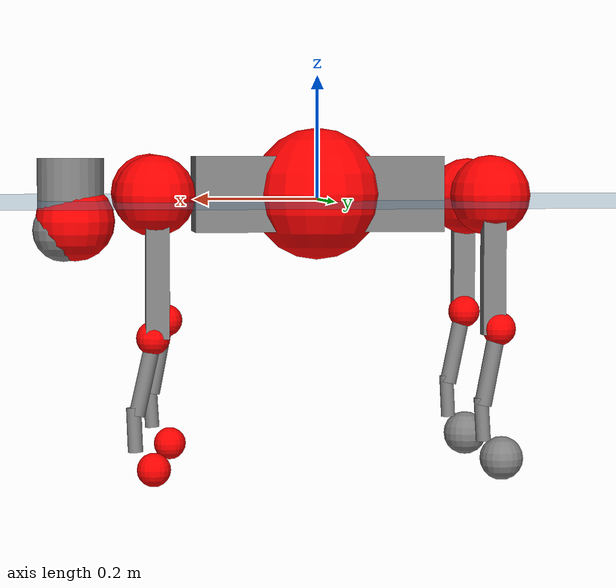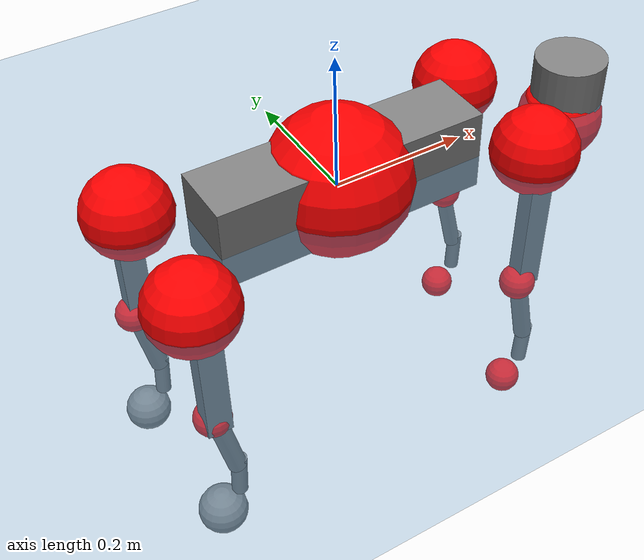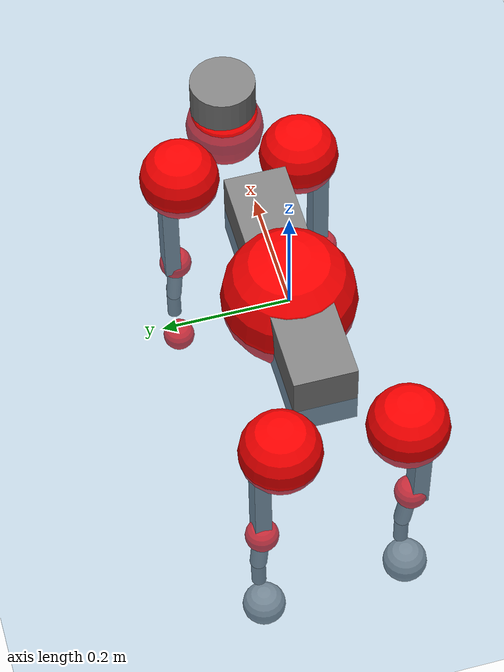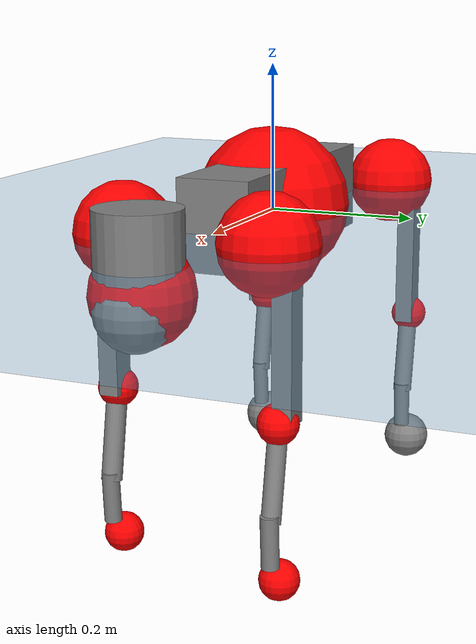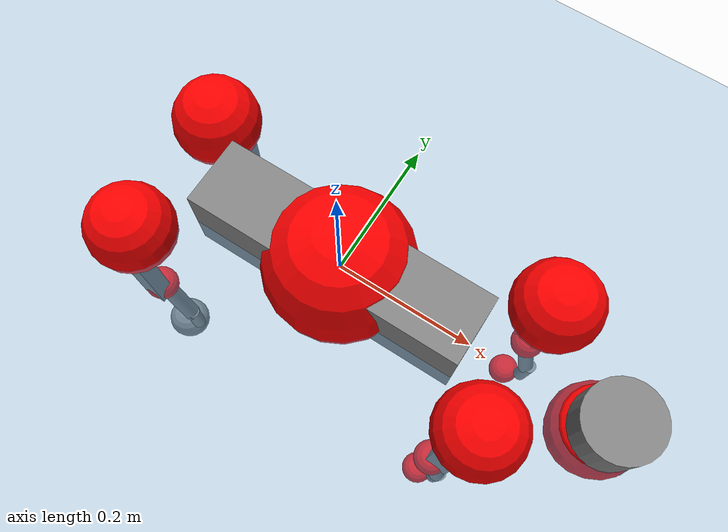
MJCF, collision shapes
<mujoco model="go2">
  <compiler angle="radian" assetdir="assets" balanceinertia="true" inertiafromgeom="false"/>

  <option timestep="0.005" density="1.2" viscosity="2e-05"/>

  <size nkey="1"/>

  <visual>
    <quality shadowsize="8192"/>
    <map shadowclip="0.5"/>
  </visual>

  <default>
    <default class="/">
      <geom contype="0" conaffinity="0" group="1" solref="-1000 -80"/>
      <site size="0.01 0.005 0.005" group="5"/>
      <general forcelimited="true" biastype="affine" gainprm="20" biasprm="0 -20 -0.5"/>
      <default class="go2">
        <joint armature="0.01" damping="0.01" frictionloss="0.2"/>
        <geom condim="1" margin="0.001"/>
        <default class="visual">
          <geom type="mesh" group="2"/>
        </default>
        <default class="collision">
          <geom group="3"/>
          <default class="foot">
            <geom size="0.022 0 0" condim="6" priority="1" friction="0.8 0.02 0.01" solimp="0.015 1 0.022"/>
          </default>
        </default>
        <default class="reward_collision_sphere">
          <geom group="5" rgba="1 0 0 1"/>
        </default>
      </default>
    </default>
  </default>

  <asset>
    <texture type="skybox" colorspace="auto" name="//unnamed_texture_0" builtin="gradient" rgb1="0.95 0.95 0.95" rgb2="0.95 0.95 0.95" width="100" height="600"/>
    <texture type="2d" colorspace="auto" name="texplane" builtin="checker" rgb1="0.345 0.575 0.748" rgb2="0.345 0.575 0.748" markrgb="1 1 1" width="512" height="512"/>
    <material name="MatPlane" class="/" texture="texplane" texuniform="true" texrepeat="2 2" specular="0.9"/>
    <material name="metal" class="/" rgba="0.9 0.95 0.95 1"/>
    <material name="black" class="/" rgba="0 0 0 1"/>
    <material name="white" class="/"/>
    <material name="gray" class="/" rgba="0.671705 0.692426 0.77427 1"/>
    <mesh name="base_0" class="/" file="base_0.obj"/>
    <mesh name="base_1" class="/" file="base_1.obj"/>
    <mesh name="base_2" class="/" file="base_2.obj"/>
    <mesh name="base_3" class="/" file="base_3.obj"/>
    <mesh name="base_4" class="/" file="base_4.obj"/>
    <mesh name="hip_0" class="/" file="hip_0.obj"/>
    <mesh name="hip_1" class="/" file="hip_1.obj"/>
    <mesh name="thigh_0" class="/" file="thigh_0.obj"/>
    <mesh name="thigh_1" class="/" file="thigh_1.obj"/>
    <mesh name="thigh_mirror_0" class="/" file="thigh_mirror_0.obj"/>
    <mesh name="thigh_mirror_1" class="/" file="thigh_mirror_1.obj"/>
    <mesh name="calf_0" class="/" file="calf_0.obj"/>
    <mesh name="calf_1" class="/" file="calf_1.obj"/>
    <mesh name="calf_mirror_0" class="/" file="calf_mirror_0.obj"/>
    <mesh name="calf_mirror_1" class="/" file="calf_mirror_1.obj"/>
    <mesh name="foot" class="/" file="foot.obj"/>
  </asset>

  <worldbody>
    <geom name="floor" class="/" size="100 100 0.125" type="plane" group="0" material="MatPlane"/>
    <light name="toplight_shadow" class="/" pos="0 0 5" dir="0.0990148 0.0990148 -0.990148" type="directional" ambient="0.04 0.04 0.04" diffuse="0.55 0.55 0.55" specular="0.12 0.12 0.12"/>
    <light name="toplight_fill" class="/" pos="0 0 5" dir="0.0990148 0.0990148 -0.990148" type="directional" castshadow="false" ambient="0.04 0.04 0.04" diffuse="0.3 0.3 0.3" specular="0.08 0.08 0.08"/>
    <body name="trunk" childclass="go2" pos="0.000622031 -0.000343986 0.00901189" quat="1 0.000135421 -0.000197514 0.000132706">
      <inertial pos="0.0292489 -0.0128547 -0.0152084" quat="0.000882012 0.713435 -0.00168905 0.700719" mass="8.75891" diaginertia="0.521078 0.0429975 0.0223216"/>
      <joint name="//unnamed_joint_0" type="free" armature="0" damping="0" frictionloss="0"/>
      <geom name="//unnamed_geom_1" class="visual" material="black" mesh="base_0"/>
      <geom name="//unnamed_geom_2" class="visual" material="black" mesh="base_1"/>
      <geom name="//unnamed_geom_3" class="visual" material="black" mesh="base_2"/>
      <geom name="//unnamed_geom_4" class="visual" material="white" mesh="base_3"/>
      <geom name="//unnamed_geom_5" class="visual" material="gray" mesh="base_4"/>
      <geom name="trunk_1" class="collision" size="0.200593 0.0498549 0.0607857" type="box"/>
      <geom name="trunk_2" class="collision" size="0.0533208 0.0479887" pos="0.397444 0 0.00968319" type="cylinder"/>
      <geom name="trunk_3" class="collision" size="0.0501215" pos="0.4086 0 -0.0580992"/>
      <geom name="//unnamed_geom_9" class="reward_collision_sphere" size="0.106642"/>
      <geom name="//unnamed_geom_10" class="reward_collision_sphere" size="0.0639849" pos="0.390471 0 -0.0435744"/>
      <site name="imu" pos="-0.0580391 0.0349814 0.0167463" size="0.0106642"/>
      <camera name="track" pos="0 -1.67277 0" quat="0.707107 0.707107 0 0" mode="trackcom"/>
      <camera name="ego_camera" pos="0.435096 0 0.0435744" quat="-0.5 -0.5 0.5 0.5"/>
      <body name="FL_hip" pos="0.26925 0.0468545 -0.000285432" quat="0.999999 -0.000510854 -0.00156085 0.000253993">
        <inertial pos="0.00369746 0.00114212 0.00658364" quat="0.492327 0.496763 0.510682 0.500045" mass="0.896501" diaginertia="0.00487709 0.000276988 0.000388938"/>
        <joint name="FL_hip_joint" pos="0 0 0" axis="0.999978 -0.00099653 -0.00653531" range="-0.935388 1.06751" armature="0.00618805" damping="0" frictionloss="0.32767"/>
        <geom name="//unnamed_geom_11" class="visual" material="metal" mesh="hip_0"/>
        <geom name="//unnamed_geom_12" class="visual" material="gray" mesh="hip_1"/>
        <geom name="//unnamed_geom_13" class="collision" size="0.0490551 0.0213283" pos="0 0.0669109 0" quat="0.707107 0.707107 0 0" type="cylinder"/>
        <geom name="//unnamed_geom_14" class="reward_collision_sphere" size="0.0639849" pos="0 0.058547 0"/>
        <body name="FL_thigh" pos="-0.00248038 0.0814522 -0.00557418" quat="1 0.000145985 -9.05359e-05 1.34987e-05">
          <inertial pos="-0.00564677 -0.0196617 -0.0248026" quat="0.82902 0.0847303 -0.0213577 0.55235" mass="1.53766" diaginertia="0.0303132 0.00239733 0.00100221"/>
          <joint name="FL_thigh_joint" pos="0 0 0" axis="0.0225564 0.999573 0.0185987" stiffness="0.0197139" range="-1.40628 3.37933" armature="0.00849558" damping="0.0153247" frictionloss="0.205452"/>
          <geom name="//unnamed_geom_15" class="visual" material="metal" mesh="thigh_0"/>
          <geom name="//unnamed_geom_16" class="visual" material="gray" mesh="thigh_1"/>
          <geom name="//unnamed_geom_17" class="collision" size="0.113573 0.0130636 0.0181291" pos="0 0 -0.103126" quat="0.707107 0 0.707107 0" type="box"/>
          <body name="FL_calf" pos="0.00558917 -0.0088229 -0.215955" quat="0.999981 0.00400729 -0.00401084 -0.00240003">
            <inertial pos="0.00898201 -0.000437599 -0.138062" quat="0.712208 0.00207493 -0.00218101 0.701962" mass="0.346614" diaginertia="0.00771922 0.000619423 5.04595e-05"/>
            <joint name="FL_calf_joint" pos="0 0 0" axis="-0.0129294 0.999854 0.0111312" range="-2.7472 -0.796698" armature="0.0139963" damping="0" frictionloss="0.309704"/>
            <geom name="//unnamed_geom_18" class="visual" material="gray" mesh="calf_0"/>
            <geom name="//unnamed_geom_19" class="visual" material="black" mesh="calf_1"/>
            <geom name="FL_calf0" class="collision" size="0.012797 0.0639849" pos="0.0111563 0 -0.0580992" quat="0.994493 0 -0.104807 0" type="cylinder"/>
            <geom name="//unnamed_geom_21" class="collision" size="0.0117306 0.0346585" pos="0.0278908 0 -0.143311" quat="0.999688 0 0.0249974 0" type="cylinder"/>
            <geom name="//unnamed_geom_22" class="visual" pos="0 0 -0.206252" quat="1 0 0 0" material="black" mesh="foot"/>
            <geom name="FL_foot" class="foot" size="0.0141941" pos="-0.00278908 0 -0.206252"/>
            <geom name="//unnamed_geom_24" class="reward_collision_sphere" size="0.0266604"/>
            <geom name="//unnamed_geom_25" class="reward_collision_sphere" size="0.0266604" pos="-0.00278908 0 -0.206252"/>
            <site name="FL_foot" class="foot" pos="-0.00278908 0 -0.206252" size="0.0106642"/>
          </body>
        </body>
      </body>
      <body name="FR_hip" pos="0.265438 -0.0315032 0.000492367" quat="0.999986 -0.000162162 0.00510893 0.00110941">
        <inertial pos="-0.00776901 -0.00317798 0.0017058" quat="0.497604 0.508035 0.502061 0.492164" mass="0.897133" diaginertia="0.00536321 0.000302031 0.000399038"/>
        <joint name="FR_hip_joint" pos="0 0 0" axis="0.999973 -0.00617667 0.00403406" range="-1.24543 1.29151" armature="0.0101945" damping="0" frictionloss="0.299487"/>
        <geom name="//unnamed_geom_26" class="visual" pos="0 -1.14935e-09 -4.92978e-08" quat="4.63268e-05 1 0 0" material="metal" mesh="hip_0"/>
        <geom name="//unnamed_geom_27" class="visual" pos="0 -1.86323e-09 1.21932e-07" quat="4.63268e-05 1 0 0" material="gray" mesh="hip_1"/>
        <geom name="//unnamed_geom_28" class="collision" size="0.0490551 0.0213283" pos="0 -0.0669109 0" quat="0.707107 0.707107 0 0" type="cylinder"/>
        <geom name="//unnamed_geom_29" class="reward_collision_sphere" size="0.0639849" pos="0 -0.058547 0"/>
        <body name="FR_thigh" pos="-0.013624 -0.0870889 -0.00117625" quat="0.999998 0.00108258 0.00151768 -0.000109852">
          <inertial pos="-0.00418566 0.0200182 -0.0320153" quat="0.556332 -0.0195502 0.0872469 0.826136" mass="1.24499" diaginertia="0.0298785 0.00211121 0.000599743"/>
          <joint name="FR_thigh_joint" pos="0 0 0" axis="-0.0625517 -0.998013 -0.0075303" range="-3.77389 1.81605" armature="0.0111222" damping="0.0535416" frictionloss="0.243851"/>
          <geom name="//unnamed_geom_30" class="visual" material="metal" mesh="thigh_mirror_0"/>
          <geom name="//unnamed_geom_31" class="visual" material="gray" mesh="thigh_mirror_1"/>
          <geom name="//unnamed_geom_32" class="collision" size="0.113573 0.0130636 0.0181291" pos="0 0 -0.103126" quat="0.707107 0 0.707107 0" type="box"/>
          <body name="FR_calf" pos="-0.0125915 -0.00254266 -0.212883" quat="0.999999 -0.000851049 -0.000705966 0.000110122">
            <inertial pos="0.0137986 0.00336589 -0.150395" quat="0.703093 -0.00264457 -0.0169577 0.710891" mass="0.351417" diaginertia="0.00723736 0.000603446 4.5552e-05"/>
            <joint name="FR_calf_joint" pos="0 0 0" axis="0.0654534 -0.997431 -0.0291136" stiffness="0.0238432" range="0.766302 2.93654" armature="0.0115813" damping="0" frictionloss="0.364541"/>
            <geom name="//unnamed_geom_33" class="visual" material="gray" mesh="calf_mirror_0"/>
            <geom name="//unnamed_geom_34" class="visual" material="black" mesh="calf_mirror_1"/>
            <geom name="FR_calf0" class="collision" size="0.0138634 0.0639849" pos="0.0139454 0 -0.0580992" quat="0.995004 0 -0.0998334 0" type="cylinder"/>
            <geom name="//unnamed_geom_36" class="collision" size="0.0117306 0.0346585" pos="0.0278908 0 -0.143311" quat="0.999688 0 0.0249974 0" type="cylinder"/>
            <geom name="//unnamed_geom_37" class="visual" pos="0 0 -0.206252" quat="1 0 0 0" material="black" mesh="foot"/>
            <geom name="FR_foot" class="foot" size="0.0210934" pos="-0.00278908 0 -0.206252"/>
            <geom name="//unnamed_geom_39" class="reward_collision_sphere" size="0.0266604"/>
            <geom name="//unnamed_geom_40" class="reward_collision_sphere" size="0.0266604" pos="-0.00278908 0 -0.206252"/>
            <site name="FR_foot" class="foot" pos="-0.00278908 0 -0.206252" size="0.0106642"/>
          </body>
        </body>
      </body>
      <body name="RL_hip" pos="-0.267063 0.0295984 -0.0010768" quat="1 0.0002993 7.02186e-05 -0.000341796">
        <inertial pos="0.0138758 0.0125359 -0.00200273" quat="0.444221 0.5237 0.495406 0.531957" mass="0.966454" diaginertia="0.00438559 0.000217659 0.000435785"/>
        <joint name="RL_hip_joint" pos="0 0 0" axis="-0.998978 0.0410052 -0.0190111" stiffness="0.0483626" range="-1.10429 1.17385" armature="0.0112312" damping="0.0494422" frictionloss="0.142932"/>
        <geom name="//unnamed_geom_41" class="visual" pos="-3.71306e-09 0 -7.27845e-07" quat="4.63268e-05 0 1 0" material="metal" mesh="hip_0"/>
        <geom name="//unnamed_geom_42" class="visual" pos="-6.01931e-09 0 -6.45495e-07" quat="4.63268e-05 0 1 0" material="gray" mesh="hip_1"/>
        <geom name="//unnamed_geom_43" class="collision" size="0.0490551 0.0213283" pos="0 0.0669109 0" quat="0.707107 0.707107 0 0" type="cylinder"/>
        <geom name="//unnamed_geom_44" class="reward_collision_sphere" size="0.0639849" pos="0 0.058547 0"/>
        <body name="RL_thigh" pos="0.00138811 0.0909342 -0.00371934" quat="0.999994 -0.00194652 0.000265807 0.00275651">
          <inertial pos="-0.000794224 -0.0097843 -0.0320862" quat="0.823102 0.100433 -0.0376637 0.557672" mass="1.33282" diaginertia="0.0271857 0.00219789 0.000582262"/>
          <joint name="RL_thigh_joint" pos="0 0 0" axis="0.0013646 0.99989 -0.0147672" range="-0.536433 4.55883" armature="0.0109383" damping="0.0276591" frictionloss="0.222898"/>
          <geom name="//unnamed_geom_45" class="visual" material="metal" mesh="thigh_0"/>
          <geom name="//unnamed_geom_46" class="visual" material="gray" mesh="thigh_1"/>
          <geom name="//unnamed_geom_47" class="collision" size="0.113573 0.0130636 0.0181291" pos="0 0 -0.103126" quat="0.707107 0 0.707107 0" type="box"/>
          <body name="RL_calf" pos="-0.00962586 0.000947825 -0.20749" quat="0.999986 0.000626579 0.00482402 0.00205051">
            <inertial pos="-0.00110321 0.00382766 -0.12834" quat="0.711634 0.00272101 -0.00393194 0.702534" mass="0.272977" diaginertia="0.00672679 0.000414623 3.00757e-05"/>
            <joint name="RL_calf_joint" pos="0 0 0" axis="-0.0293821 0.999228 -0.0260924" stiffness="0.00522945" range="-2.74095 -0.540887" armature="0.0105079" damping="0" frictionloss="0.146774"/>
            <geom name="//unnamed_geom_48" class="visual" material="gray" mesh="calf_0"/>
            <geom name="//unnamed_geom_49" class="visual" material="black" mesh="calf_1"/>
            <geom name="RL_calf0" class="collision" size="0.0138634 0.0639849" pos="0.0139454 0 -0.0580992" quat="0.995004 0 -0.0998334 0" type="cylinder"/>
            <geom name="//unnamed_geom_51" class="collision" size="0.0117306 0.0346585" pos="0.0278908 0 -0.143311" quat="0.999688 0 0.0249974 0" type="cylinder"/>
            <geom name="//unnamed_geom_52" class="visual" pos="0 0 -0.206252" quat="1 0 0 0" material="black" mesh="foot"/>
            <geom name="RL_foot" class="foot" size="0.0346255" pos="-0.00278908 0 -0.206252"/>
            <geom name="//unnamed_geom_54" class="reward_collision_sphere" size="0.0266604"/>
            <geom name="//unnamed_geom_55" class="reward_collision_sphere" size="0.0266604" pos="-0.00278908 0 -0.206252"/>
            <site name="RL_foot" class="foot" pos="-0.00278908 0 -0.206252" size="0.0106642"/>
          </body>
        </body>
      </body>
      <body name="RR_hip" pos="-0.270583 -0.0488725 -0.00640358" quat="0.999984 0.004339 -0.00353216 0.000672609">
        <inertial pos="0.00486507 -0.00792947 0.00563473" quat="0.520662 0.532022 0.494978 0.448174" mass="0.946302" diaginertia="0.00463834 0.000290537 0.000445879"/>
        <joint name="RR_hip_joint" pos="0 0 0" axis="-0.999759 0.00859213 -0.0202155" stiffness="0.0194273" range="-0.826464 0.988123" armature="0.0172986" damping="0.0251811" frictionloss="0.128872"/>
        <geom name="//unnamed_geom_56" class="visual" pos="3.69373e-09 -1.14935e-09 -6.78547e-07" quat="2.14617e-09 4.63268e-05 4.63268e-05 -1" material="metal" mesh="hip_0"/>
        <geom name="//unnamed_geom_57" class="visual" pos="6.0671e-09 -1.86323e-09 -7.67427e-07" quat="2.14617e-09 4.63268e-05 4.63268e-05 -1" material="gray" mesh="hip_1"/>
        <geom name="//unnamed_geom_58" class="collision" size="0.0490551 0.0213283" pos="0 -0.0669109 0" quat="0.707107 0.707107 0 0" type="cylinder"/>
        <geom name="//unnamed_geom_59" class="reward_collision_sphere" size="0.0639849" pos="0 -0.058547 0"/>
        <body name="RR_thigh" pos="0.00149501 -0.0830301 0.0128865" quat="1 -0.000216392 0.000601183 -7.75642e-05">
          <inertial pos="-0.00470463 0.00422681 -0.0388994" quat="0.531526 -0.000850581 0.125755 0.837654" mass="1.62242" diaginertia="0.0370086 0.00279299 0.000889842"/>
          <joint name="RR_thigh_joint" pos="0 0 0" axis="0.0100508 -0.999185 0.0390971" range="-4.64571 0.77135" armature="0.00239897" damping="0" frictionloss="0.170413"/>
          <geom name="//unnamed_geom_60" class="visual" material="metal" mesh="thigh_mirror_0"/>
          <geom name="//unnamed_geom_61" class="visual" material="gray" mesh="thigh_mirror_1"/>
          <geom name="//unnamed_geom_62" class="collision" size="0.113573 0.0130636 0.0181291" pos="0 0 -0.103126" quat="0.707107 0 0.707107 0" type="box"/>
          <body name="RR_calf" pos="-0.000493801 0.0100001 -0.208214" quat="0.999989 0.00234886 0.000598801 -0.00398482">
            <inertial pos="0.00240485 -0.000585651 -0.1388" quat="0.670051 -0.0208087 -0.0434672 0.740749" mass="0.363615" diaginertia="0.00825631 0.000679051 4.00596e-05"/>
            <joint name="RR_calf_joint" pos="0 0 0" axis="0.00558645 -0.99821 -0.0595381" range="0.63432 2.48991" armature="0.0105652" damping="0" frictionloss="0.196306"/>
            <geom name="//unnamed_geom_63" class="visual" material="gray" mesh="calf_mirror_0"/>
            <geom name="//unnamed_geom_64" class="visual" material="black" mesh="calf_mirror_1"/>
            <geom name="RR_calf0" class="collision" size="0.0138634 0.0639849" pos="0.0139454 0 -0.0580992" quat="0.995004 0 -0.0998334 0" type="cylinder"/>
            <geom name="//unnamed_geom_66" class="collision" size="0.0117306 0.0346585" pos="0.0278908 0 -0.143311" quat="0.999688 0 0.0249974 0" type="cylinder"/>
            <geom name="//unnamed_geom_67" class="visual" pos="0 0 -0.206252" quat="1 0 0 0" material="black" mesh="foot"/>
            <geom name="RR_foot" class="foot" size="0.035929" pos="-0.00278908 0 -0.206252"/>
            <geom name="//unnamed_geom_69" class="reward_collision_sphere" size="0.0266604"/>
            <geom name="//unnamed_geom_70" class="reward_collision_sphere" size="0.0266604" pos="-0.00278908 0 -0.206252"/>
            <site name="RR_foot" class="foot" pos="-0.00278908 0 -0.206252" size="0.0106642"/>
          </body>
        </body>
      </body>
    </body>
  </worldbody>

  <contact>
    <pair class="/" geom1="floor" geom2="FL_foot" name="//unnamed_contact_0"/>
    <pair class="/" geom1="floor" geom2="FR_foot" name="//unnamed_contact_1"/>
    <pair class="/" geom1="floor" geom2="RL_foot" name="//unnamed_contact_2"/>
    <pair class="/" geom1="floor" geom2="RR_foot" name="//unnamed_contact_3"/>
  </contact>

  <actuator>
    <general name="FL_hip" class="/" joint="FL_hip_joint" forcerange="-32.0359 32.0359" gainprm="14.6493" biasprm="0 -14.6493 -0.459805"/>
    <general name="FL_thigh" class="/" joint="FL_thigh_joint" forcerange="-38.6114 38.6114" gainprm="14.6493" biasprm="0 -14.6493 -0.459805"/>
    <general name="FL_calf" class="/" joint="FL_calf_joint" forcerange="-42.5618 42.5618" gainprm="14.6493" biasprm="0 -14.6493 -0.459805"/>
    <general name="FR_hip" class="/" joint="FR_hip_joint" forcerange="-28.9558 28.9558" gainprm="14.6493" biasprm="0 -14.6493 -0.459805"/>
    <general name="FR_thigh" class="/" joint="FR_thigh_joint" forcerange="-20.9512 20.9512" gainprm="14.6493" biasprm="0 -14.6493 -0.459805"/>
    <general name="FR_calf" class="/" joint="FR_calf_joint" forcerange="-59.2379 59.2379" gainprm="14.6493" biasprm="0 -14.6493 -0.459805"/>
    <general name="RL_hip" class="/" joint="RL_hip_joint" forcerange="-17.3556 17.3556" gainprm="14.6493" biasprm="0 -14.6493 -0.459805"/>
    <general name="RL_thigh" class="/" joint="RL_thigh_joint" forcerange="-25.3403 25.3403" gainprm="14.6493" biasprm="0 -14.6493 -0.459805"/>
    <general name="RL_calf" class="/" joint="RL_calf_joint" forcerange="-60.6387 60.6387" gainprm="14.6493" biasprm="0 -14.6493 -0.459805"/>
    <general name="RR_hip" class="/" joint="RR_hip_joint" forcerange="-38.375 38.375" gainprm="14.6493" biasprm="0 -14.6493 -0.459805"/>
    <general name="RR_thigh" class="/" joint="RR_thigh_joint" forcerange="-27.265 27.265" gainprm="14.6493" biasprm="0 -14.6493 -0.459805"/>
    <general name="RR_calf" class="/" joint="RR_calf_joint" forcerange="-53.299 53.299" gainprm="14.6493" biasprm="0 -14.6493 -0.459805"/>
  </actuator>

  <sensor>
    <gyro site="imu" name="imu_angular_velocity"/>
    <velocimeter site="imu" name="imu_linear_velocity"/>
    <framelinvel objtype="site" objname="FL_foot" name="FL_foot_global_linear_velocity"/>
    <framelinvel objtype="site" objname="FR_foot" name="FR_foot_global_linear_velocity"/>
    <framelinvel objtype="site" objname="RL_foot" name="RL_foot_global_linear_velocity"/>
    <framelinvel objtype="site" objname="RR_foot" name="RR_foot_global_linear_velocity"/>
  </sensor>

  <keyframe>
    <key name="home" qpos="0 0 0.325 1 0 0 0 0.1 0.8 -1.5 -0.1 -0.8 1.5 -0.1 0.8 -1.5 0.1 -0.8 1.5"/>
  </keyframe>
</mujoco>
